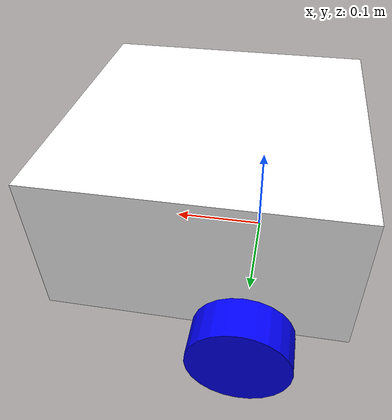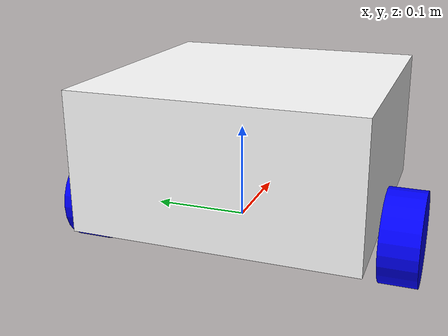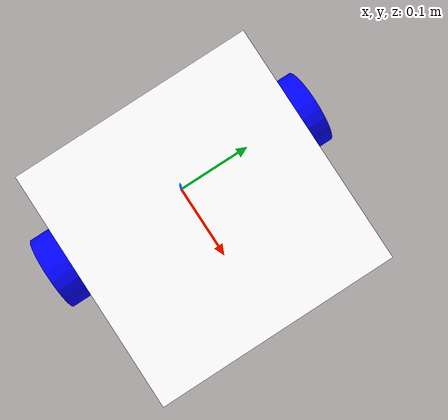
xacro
<?xml version="1.0"?>
<robot xmlns:xacro="http://www.ros.org/wiki/xacro">
    <xacro:include filename="inertial_macro.xacro"/>

    <material name="white">
        <color rgba="1 1 1 1"/>
    </material>

    <material name="orange">
        <color rgba="1 0.5 0 1"/>
    </material>

    <material name="blue">
        <color rgba="0 0 1 1"/>
    </material>

    <material name="black">
        <color rgba="0 0 0 1"/>
    </material>

    <material name="red">
        <color rgba="1 0 0 1"/>
    </material>

    <link name="base_link">
    </link>

    <joint name="chassis_joint" type="fixed">
        <parent link="base_link"/>
        <child link="chassis"/>
        <origin xyz="-0.1 0 0"/>
    </joint>

    <link name="chassis">
        <visual>
            <origin xyz="0.15 0 0.075"/>
            <geometry>
                <box size="0.3 0.3 0.15"/>
            </geometry>
            <material name="white"/>
        </visual>
        <collision>
            <origin xyz="0.15 0 0.075"/>
            <geometry>
                <box size="0.3 0.3 0.15"/>
            </geometry>
        </collision>
        <xacro:inertial_box mass="5" size="0.3 0.3 0.15">
        <origin xyz="0.175 0 0.0" rpy="0 0 0"/>
        </xacro:inertial_box>
    </link>
    <gazebo reference="chassis">
        <material>Gazebo/White</material>
    </gazebo>

    <!-- left wheel link -->

    <joint name ="left_wheel_joint" type="continuous">
        <parent link="base_link"/>
        <child link="left_wheel"/>
        <origin xyz="0 0.175 0" rpy="${-pi/2} 0 0"/> <!-- Orient cylinder length along Y-axis -->
        <axis xyz="0 0 1"/> <!-- Rotate around local Z-axis (the cylinder's length) -->
    </joint>

    <link name="left_wheel">
        <visual>
            <geometry>
                <cylinder radius="0.05" length="0.04"/>
            </geometry>
            <material name="blue"/>
        </visual>
        <collision>
            <geometry>
                <cylinder radius="0.05" length="0.04"/>
            </geometry>
        </collision>
        <xacro:inertial_cylinder mass="0.1" radius="0.05" length="0.04">
            <origin xyz="0 0 0" rpy="0 0 0"/>
        </xacro:inertial_cylinder>
    </link>
    <gazebo reference="left_wheel">
        <material>Gazebo/Blue</material>
    </gazebo>

    <!-- right wheel link -->

    <joint name ="right_wheel_joint" type="continuous">
        <parent link="base_link"/>
        <child link="right_wheel"/>
        <origin xyz="0 -0.175 0" rpy="${pi/2} 0 0"/> <!-- Orient cylinder length along -Y-axis -->
        <axis xyz="0 0 -1"/> <!-- Rotate around local Z-axis (the cylinder's length) -->
    </joint>

    <link name="right_wheel">
        <visual>
            <geometry>
                <cylinder radius="0.05" length="0.04"/>
            </geometry>
            <material name="blue"/>
        </visual>
        <collision>
            <geometry>
                <cylinder radius="0.05" length="0.04"/>
            </geometry>
        </collision>
        <xacro:inertial_cylinder mass="0.1" radius="0.05" length="0.04">
            <origin xyz="0 0 0" rpy="0 0 0"/>
        </xacro:inertial_cylinder>
    </link>
    <gazebo reference="right_wheel">
        <material>Gazebo/Blue</material>
    </gazebo>

    <joint name="caster_wheel_joint" type="fixed">
        <parent link="base_link"/>
        <child link="caster_wheel"/>
        <origin xyz="0.15 0 0"/>
    </joint>

    <link name="caster_wheel">
        <visual>
            <geometry>
                <sphere radius="0.05"/>
            </geometry>
            <material name="black"/>
        </visual>
        <collision>
            <geometry>
                <sphere radius="0.05"/>
            </geometry>
        </collision>
        <xacro:inertial_sphere mass="0.1" radius="0.05">
            <origin xyz="0 0 0" rpy="0 0 0"/>
        </xacro:inertial_sphere>
    </link>
    <gazebo reference="caster_wheel">
        <material>Gazebo/Black</material>
        <mu1 value="0.001"/>
        <mu2 value="0.001"/>
    </gazebo>

</robot>

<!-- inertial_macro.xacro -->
<robot xmlns:xacro="http://www.ros.org/wiki/xacro" >

    <xacro:macro name="inertial_sphere" params="mass radius *origin">
        <inertial>
            <xacro:insert_block name="origin"/>
            <mass value="${mass}" />
            <inertia ixx="${(2/5) * mass * (radius*radius)}" ixy="0.0" ixz="0.0"
                     iyy="${(2/5) * mass * (radius*radius)}" iyz="0.0"
                     izz="${(2/5) * mass * (radius*radius)}" />
        </inertial>
    </xacro:macro>

    <xacro:macro name="inertial_box" params="mass size *origin">
        <inertial>
            <xacro:insert_block name="origin"/>
            <mass value="${mass}" />
            <xacro:property name="x" value="${size.split(' ')[0]}" />
            <xacro:property name="y" value="${size.split(' ')[1]}" />
            <xacro:property name="z" value="${size.split(' ')[2]}" />
            <inertia ixx="${(1/12) * mass * (y*y + z*z)}" ixy="0.0" ixz="0.0"
                     iyy="${(1/12) * mass * (x*x + z*z)}" iyz="0.0"
                     izz="${(1/12) * mass * (x*x + y*y)}" />
        </inertial>
    </xacro:macro>

    <xacro:macro name="inertial_cylinder" params="mass radius length *origin">
        <inertial>
            <xacro:insert_block name="origin"/>
            <mass value="${mass}" />
            <inertia ixx="${(1/12) * mass * (3*radius*radius + length*length)}" ixy="0.0" ixz="0.0"
                     iyy="${(1/12) * mass * (3*radius*radius + length*length)}" iyz="0.0"
                     izz="${(1/2) * mass * (radius*radius)}" />
        </inertial>
    </xacro:macro>

</robot>
